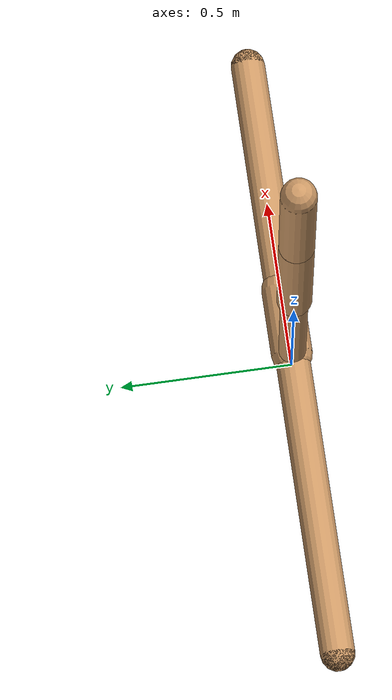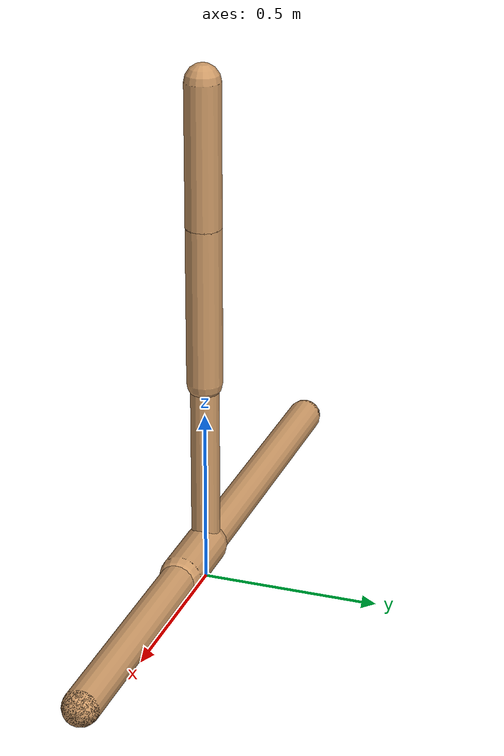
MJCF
<mujoco model="walker2d">
  <compiler angle="degree" coordinate="global" inertiafromgeom="true"/>
  <default>
    <joint armature="0.01" damping=".1" limited="true"/>
    <geom conaffinity="0" condim="3" contype="1" density="1000" friction="0.8 .1 .1" rgba="0.8 0.6 .4 1"/>
  </default>
  <option integrator="RK4" timestep="0.002"/>
  <worldbody>
    <body name="torso">
      <joint armature="0" axis="1 0 0" damping="0" limited="false" name="ignorex" pos="0 0 0" stiffness="0" type="slide"/>
      <joint armature="0" axis="0 0 1" damping="0" limited="false" name="ignorez" pos="0 0 0" ref="1.25" stiffness="0" type="slide"/>
      <joint armature="0" axis="0 1 0" damping="0" limited="false" name="ignorey" pos="0 0 0" stiffness="0" type="hinge"/>
      <geom fromto="0 0 1.45 0 0 1.05" name="torso_geom" size="0.05" type="capsule"/>
      <body name="thigh">
        <joint axis="0 -1 0" name="thigh_joint" pos="0 0 1.05" range="-150 90" type="hinge"/>
        <geom fromto="0 0 1.05 0 0 0.6" name="thigh_geom" size="0.05" type="capsule"/>
        <body name="leg">
          <joint axis="0 -1 0" name="leg_joint" pos="0 0 0.6" range="-150 0" type="hinge"/>
          <geom fromto="0 0 0.6 0 0 0.1" name="leg_geom" size="0.04" type="capsule"/>
          <body name="foot">
            <joint axis="0 -1 0" name="foot_joint" pos="0 0 0.1" range="-2 45" type="hinge"/>
            <geom fromto="-0.0 0 0.1 0.2 0 0.1" name="foot_geom" size="0.06" type="capsule"/>
            <body name="ski">
              <geom fromto="0.9 0 0.1 -0.9 0 0.1" pos="0 0 -0.1" name="board_geom_right" size="0.05" type="capsule"/>
            </body>
          </body>
        </body>
      </body>
      <body name="thigh_left">
        <joint axis="0 -1 0" name="thigh_left_joint" pos="0 0 1.05" range="-150 0" type="hinge"/>
        <geom fromto="0 0 1.05 0 0 0.6" name="thigh_left_geom" rgba=".7 .3 .6 1" size="0.05" type="capsule"/>
        <body name="leg_left">
          <joint axis="0 -1 0" name="leg_left_joint" pos="0 0 0.6" range="-150 0" type="hinge"/>
          <geom fromto="0 0 0.6 0 0 0.1" name="leg_left_geom" rgba=".7 .3 .6 1" size="0.04" type="capsule"/>
          <body name="foot_left">
            <joint axis="0 -1 0" name="foot_left_joint" pos="0 0 0.1" range="-2 45" type="hinge"/>
            <geom fromto="-0.0 0 0.1 0.2 0 0.1" name="foot_left_geom" rgba=".7 .3 .6 1" size="0.06" type="capsule"/>
            <body name="ski_left">
              <geom fromto="-0.9 0 0.1 0.9 0 0.1" pos="0 0 -0.1" name="board_geom_right" size="0.05" type="capsule"/>
            </body>
          </body>
        </body>
      </body>
    </body>
  </worldbody>
  <equality>
    <weld body1="ski" body2="ski_left" damping="0.0" margin="0.0" ref="0.0 0.0 0.0" stiffness="0.0"/>
 </equality>
  <actuator>
    <motor ctrllimited="true" ctrlrange="-1.0 1.0" gear="100" joint="thigh_joint"/>
    <motor ctrllimited="true" ctrlrange="-1.0 1.0" gear="100" joint="leg_joint"/>
    <motor ctrllimited="true" ctrlrange="-1.0 1.0" gear="100" joint="foot_joint"/>
    <motor ctrllimited="true" ctrlrange="-1.0 1.0" gear="100" joint="thigh_left_joint"/>
    <motor ctrllimited="true" ctrlrange="-1.0 1.0" gear="100" joint="leg_left_joint"/>
    <motor ctrllimited="true" ctrlrange="-1.0 1.0" gear="100" joint="foot_left_joint"/>
    <motor ctrllimited="true" ctrlrange="-1.0 1.0" gear="100" joint="thigh_third_joint"/>
    <motor ctrllimited="true" ctrlrange="-1.0 1.0" gear="100" joint="leg_third_joint"/>
    <motor ctrllimited="true" ctrlrange="-1.0 1.0" gear="100" joint="foot_third_joint"/>
  </actuator>
    <equality>
      <weld name="weld_left" body1="board_left" body2="board_right" anchor="0 0 0" axis="0 0 1"/>
      <weld name="weld_right" body1="board_right" body2="board_left" anchor="0 0 0" axis="0 0 1"/>
    </equality>
    <asset>
        <texture builtin="gradient" height="100" width="100" name="gradient" rgb1="1 1 1" rgb2="0 0 0"/>
        <texture builtin="checker" height="100" width="100" name="checker" rgb1=".1 .1 .1" rgb2=".9 .9 .9" type="2d"/>
    </asset>
</mujoco>
